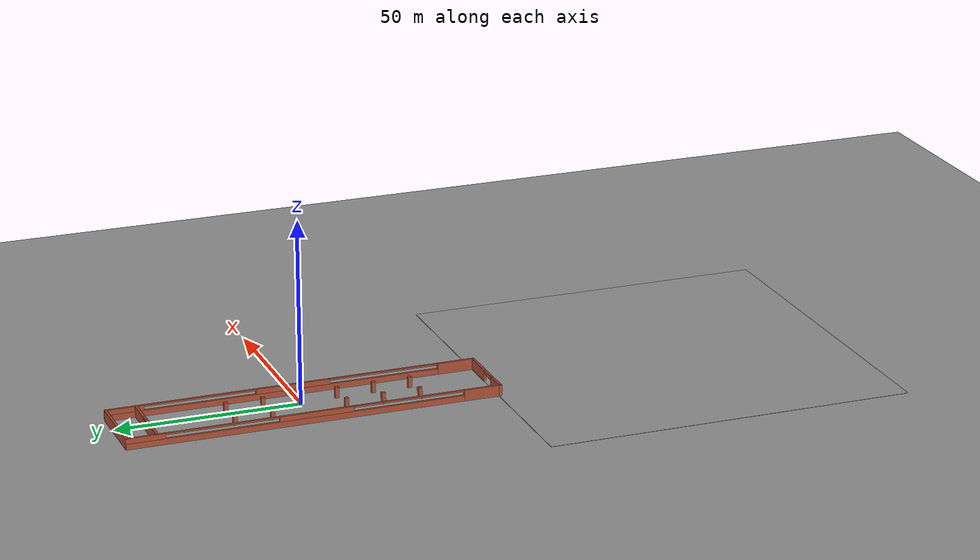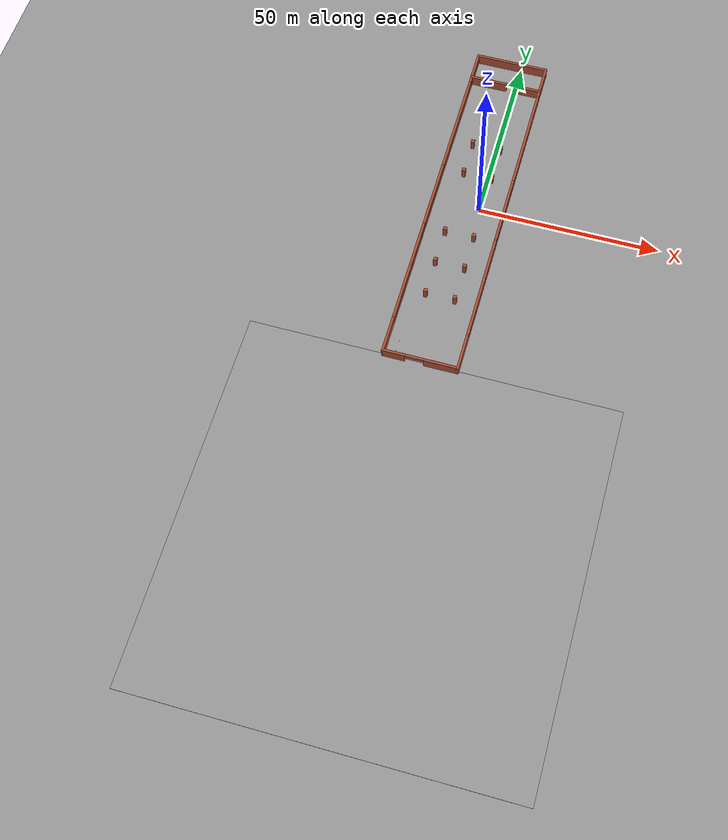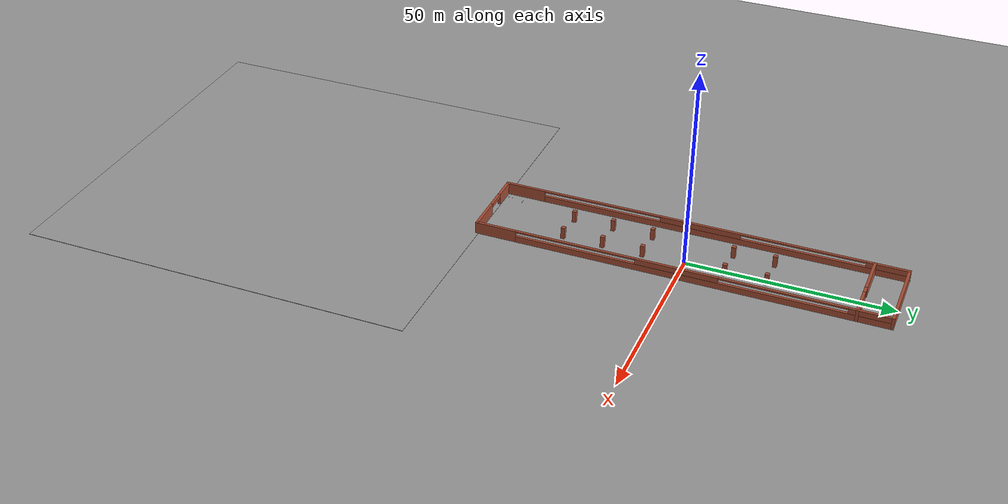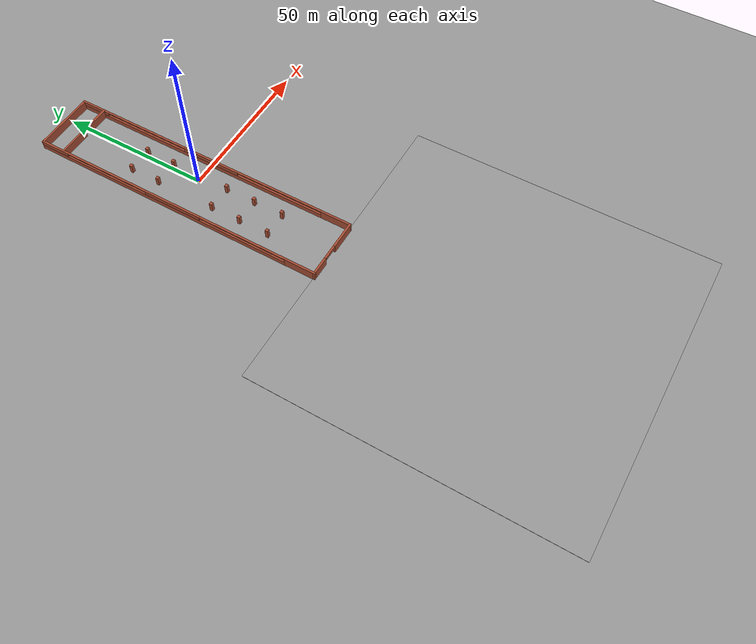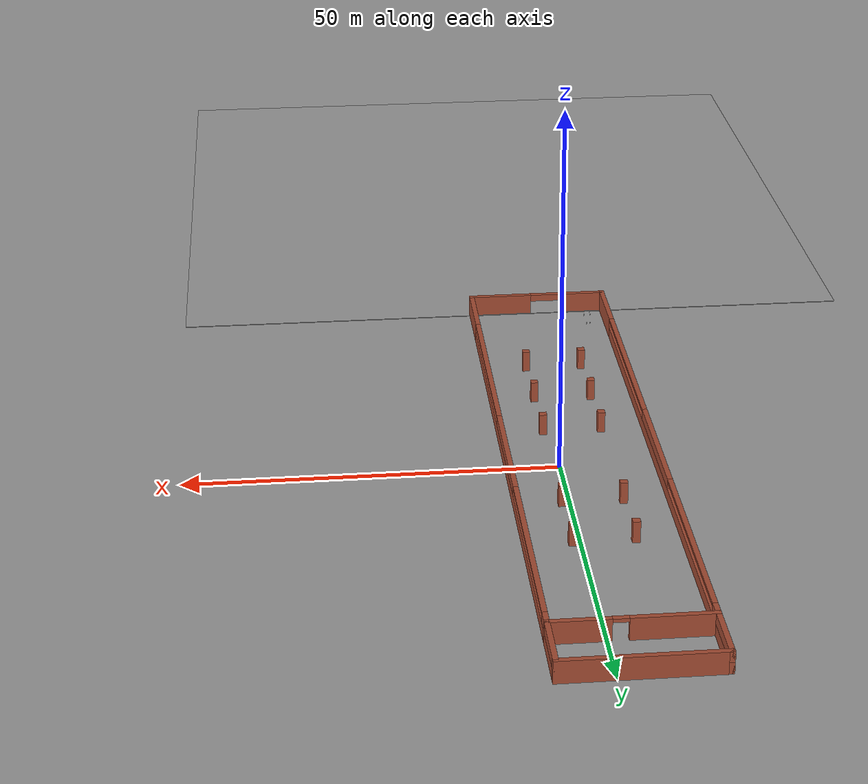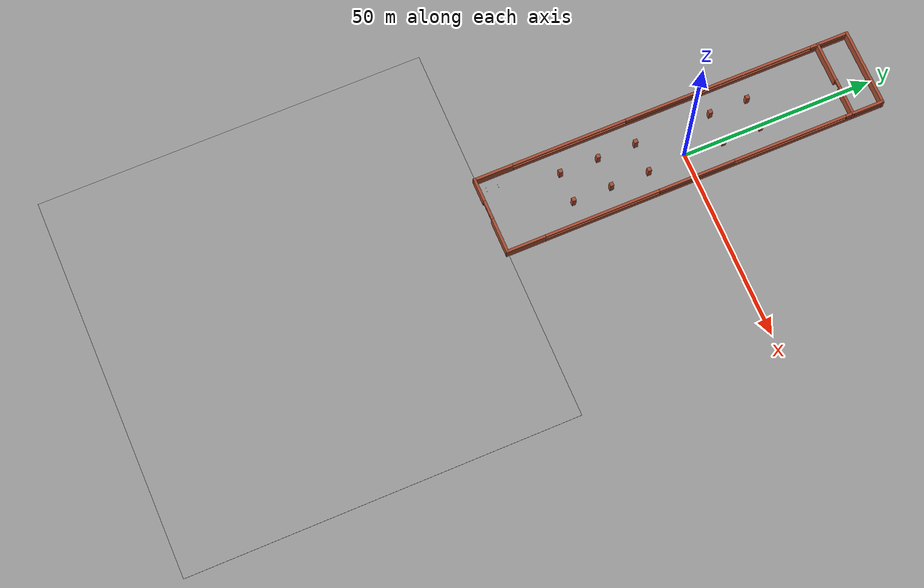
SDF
<sdf version="1.4">
 <world name="default">
  <light name="sun" type="directional">
   <pose>0 0 10 0 -0 0</pose>
   <diffuse>0.8 0.8 0.8 1</diffuse>
   <specular>0.2 0.2 0.2 1</specular>
   <attenuation>
    <range>1000</range>
    <constant>0.9</constant>
    <linear>0.01</linear>
    <quadratic>0.001</quadratic>
   </attenuation>
   <direction>-0.5 0.1 -0.9</direction>
  </light>
  <physics type="ode">
   <max_step_size>0.001</max_step_size>
   <real_time_factor>1</real_time_factor>
   <real_time_update_rate>1000</real_time_update_rate>
   <gravity>0 0 -9.8</gravity>
  </physics>
  <scene><ambient>0.4 0.4 0.4 1</ambient><background>0.7 0.7 0.7 1</background><shadows>1</shadows></scene>
  <spherical_coordinates>
   <surface_model>EARTH_WGS84</surface_model>
   <latitude_deg>0</latitude_deg>
   <longitude_deg>0</longitude_deg>
   <elevation>0</elevation>
   <heading_deg>0</heading_deg>
  </spherical_coordinates>
  <model name="beer">
   <link name="link">
    <pose>0 0 0.115 0 -0 0</pose>
    <inertial>
     <mass>0.39</mass>
     <inertia><ixx>0.00058</ixx><ixy>0</ixy><ixz>0</ixz><iyy>0.00058</iyy><iyz>0</iyz><izz>0.00019</izz></inertia>
    </inertial>
    <collision name="collision">
     <geometry><cylinder><radius>0.055</radius><length>0.23</length></cylinder></geometry>
    </collision>
    <visual name="visual">
     <geometry><cylinder><radius>0.055</radius><length>0.23</length></cylinder></geometry>
     <material>
      <script>
       <uri>model://beer/materials/scripts</uri>
       <uri>model://beer/materials/textures</uri>
       <name>Beer/Diffuse</name>
      </script>
     </material>
    </visual>
    <velocity_decay><linear>0</linear><angular>0</angular></velocity_decay>
   </link>
   <pose>-11 -49 -0 -2e-06 1e-06 5e-05</pose>
   <static>0</static>
  </model>
  <model name="beer_0">
   <link name="link">
    <pose>0 0 0.115 0 -0 0</pose>
    <inertial>
     <mass>0.39</mass>
     <inertia><ixx>0.00058</ixx><ixy>0</ixy><ixz>0</ixz><iyy>0.00058</iyy><iyz>0</iyz><izz>0.00019</izz></inertia>
    </inertial>
    <collision name="collision">
     <geometry><cylinder><radius>0.055</radius><length>0.23</length></cylinder></geometry>
    </collision>
    <visual name="visual">
     <geometry><cylinder><radius>0.055</radius><length>0.23</length></cylinder></geometry>
     <material>
      <script>
       <uri>model://beer/materials/scripts</uri>
       <uri>model://beer/materials/textures</uri>
       <name>Beer/Diffuse</name>
      </script>
     </material>
    </visual>
    <velocity_decay><linear>0</linear><angular>0</angular></velocity_decay>
   </link>
   <pose>-11.0043 -47.995 -0 -2e-06 -1e-06 -0.216385</pose>
   <static>0</static>
  </model>
  <model name="beer_1">
   <link name="link">
    <pose>0 0 0.115 0 -0 0</pose>
    <inertial>
     <mass>0.39</mass>
     <inertia><ixx>0.00058</ixx><ixy>0</ixy><ixz>0</ixz><iyy>0.00058</iyy><iyz>0</iyz><izz>0.00019</izz></inertia>
    </inertial>
    <collision name="collision">
     <geometry><cylinder><radius>0.055</radius><length>0.23</length></cylinder></geometry>
    </collision>
    <visual name="visual">
     <geometry><cylinder><radius>0.055</radius><length>0.23</length></cylinder></geometry>
     <material>
      <script>
       <uri>model://beer/materials/scripts</uri>
       <uri>model://beer/materials/textures</uri>
       <name>Beer/Diffuse</name>
      </script>
     </material>
    </visual>
    <velocity_decay><linear>0</linear><angular>0</angular></velocity_decay>
   </link>
   <pose>-10 -48 -0 -2e-06 1e-06 5e-05</pose>
   <static>0</static>
  </model>
  <model name="beer_2">
   <link name="link">
    <pose>0 0 0.115 0 -0 0</pose>
    <inertial>
     <mass>0.39</mass>
     <inertia><ixx>0.00058</ixx><ixy>0</ixy><ixz>0</ixz><iyy>0.00058</iyy><iyz>0</iyz><izz>0.00019</izz></inertia>
    </inertial>
    <collision name="collision">
     <geometry><cylinder><radius>0.055</radius><length>0.23</length></cylinder></geometry>
    </collision>
    <visual name="visual">
     <geometry><cylinder><radius>0.055</radius><length>0.23</length></cylinder></geometry>
     <material>
      <script>
       <uri>model://beer/materials/scripts</uri>
       <uri>model://beer/materials/textures</uri>
       <name>Beer/Diffuse</name>
      </script>
     </material>
    </visual>
    <velocity_decay><linear>0</linear><angular>0</angular></velocity_decay>
   </link>
   <pose>-10 -45 -0 -2e-06 1e-06 5e-05</pose>
   <static>0</static>
  </model>
  <model name="beer_3">
   <link name="link">
    <pose>0 0 0.115 0 -0 0</pose>
    <inertial>
     <mass>0.39</mass>
     <inertia><ixx>0.00058</ixx><ixy>0</ixy><ixz>0</ixz><iyy>0.00058</iyy><iyz>0</iyz><izz>0.00019</izz></inertia>
    </inertial>
    <collision name="collision">
     <geometry><cylinder><radius>0.055</radius><length>0.23</length></cylinder></geometry>
    </collision>
    <visual name="visual">
     <geometry><cylinder><radius>0.055</radius><length>0.23</length></cylinder></geometry>
     <material>
      <script>
       <uri>model://beer/materials/scripts</uri>
       <uri>model://beer/materials/textures</uri>
       <name>Beer/Diffuse</name>
      </script>
     </material>
    </visual>
    <velocity_decay><linear>0</linear><angular>0</angular></velocity_decay>
   </link>
   <pose>-10.581 -45 -0 -2e-06 1e-06 5e-05</pose>
   <static>0</static>
  </model>
  <model name="ground_plane_0">
   <static>1</static>
   <link name="link">
    <collision name="collision">
     <geometry><plane><normal>0 0 1</normal><size>100 100</size></plane></geometry>
     <surface><friction><ode><mu>100</mu><mu2>50</mu2></ode></friction></surface>
    </collision>
    <visual name="visual">
     <cast_shadows>0</cast_shadows>
     <geometry><plane><normal>0 0 1</normal><size>100 100</size></plane></geometry>
     <material>
      <script><uri>file://media/materials/scripts/gazebo.material</uri><name>Gazebo/Grey</name></script>
     </material>
    </visual>
    <velocity_decay><linear>0</linear><angular>0</angular></velocity_decay>
   </link>
   <pose>0.507921 0 0 0 -0 0</pose>
  </model>
  <model name="ground_plane_1">
   <static>1</static>
   <link name="link">
    <collision name="collision">
     <geometry><plane><normal>0 0 1</normal><size>100 100</size></plane></geometry>
     <surface><friction><ode><mu>100</mu><mu2>50</mu2></ode></friction></surface>
    </collision>
    <visual name="visual">
     <cast_shadows>0</cast_shadows>
     <geometry><plane><normal>0 0 1</normal><size>100 100</size></plane></geometry>
     <material>
      <script><uri>file://media/materials/scripts/gazebo.material</uri><name>Gazebo/Grey</name></script>
     </material>
    </visual>
    <velocity_decay><linear>0</linear><angular>0</angular></velocity_decay>
   </link>
   <pose>0.514688 -99.5997 0 0 -0 0</pose>
  </model>
  <model name="FactoryWorldModel_0">
   <pose>-3 0 0 0 -0 0</pose>
   <link name="Wall_10">
    <pose>0 -50 0 0 -0 0</pose>
    <visual name="Wall_10_Visual_0">
     <pose>-7.19666 0 1.5 0 -0 0</pose>
     <geometry><box><size>6.30668 0.7 3</size></box></geometry>
     <material>
      <script><uri>file://media/materials/scripts/gazebo.material</uri><name>Gazebo/Bricks</name></script>
      <ambient>1 1 1 1</ambient>
     </material>
    </visual>
    <collision name="Wall_10_Collision_0">
     <geometry><box><size>6.30668 0.7 3</size></box></geometry>
     <pose>-7.19666 0 1.5 0 -0 0</pose>
    </collision>
    <visual name="Wall_10_Visual_1">
     <pose>5.65334 0 1.5 0 -0 0</pose>
     <geometry><box><size>9.39332 0.7 3</size></box></geometry>
     <material>
      <script><uri>file://media/materials/scripts/gazebo.material</uri><name>Gazebo/Bricks</name></script>
      <ambient>1 1 1 1</ambient>
     </material>
    </visual>
    <collision name="Wall_10_Collision_1">
     <geometry><box><size>9.39332 0.7 3</size></box></geometry>
     <pose>5.65334 0 1.5 0 -0 0</pose>
    </collision>
    <visual name="Wall_10_Visual_2">
     <pose>-1.54332 0 2.5 0 -0 0</pose>
     <geometry><box><size>5 0.7 1</size></box></geometry>
     <material>
      <script><uri>file://media/materials/scripts/gazebo.material</uri><name>Gazebo/Bricks</name></script>
      <ambient>1 1 1 1</ambient>
     </material>
    </visual>
    <collision name="Wall_10_Collision_2">
     <geometry><box><size>5 0.7 1</size></box></geometry>
     <pose>-1.54332 0 2.5 0 -0 0</pose>
    </collision>
    <velocity_decay><linear>0</linear><angular>0</angular></velocity_decay>
   </link>
   <link name="Wall_14">
    <collision name="Wall_14_Collision">
     <geometry><box><size>1 1 3</size></box></geometry>
     <pose>0 0 1.5 0 -0 0</pose>
    </collision>
    <visual name="Wall_14_Visual">
     <pose>0 0 1.5 0 -0 0</pose>
     <geometry><box><size>1 1 3</size></box></geometry>
     <material>
      <script><uri>file://media/materials/scripts/gazebo.material</uri><name>Gazebo/Bricks</name></script>
      <ambient>1 1 1 1</ambient>
     </material>
    </visual>
    <pose>4 -30 0 0 -0 0</pose>
    <velocity_decay><linear>0</linear><angular>0</angular></velocity_decay>
   </link>
   <link name="Wall_16">
    <collision name="Wall_16_Collision">
     <geometry><box><size>1 1 3</size></box></geometry>
     <pose>0 0 1.5 0 -0 0</pose>
    </collision>
    <visual name="Wall_16_Visual">
     <pose>0 0 1.5 0 -0 0</pose>
     <geometry><box><size>1 1 3</size></box></geometry>
     <material>
      <script><uri>file://media/materials/scripts/gazebo.material</uri><name>Gazebo/Bricks</name></script>
      <ambient>1 1 1 1</ambient>
     </material>
    </visual>
    <pose>-4 -30 0 0 -0 0</pose>
    <velocity_decay><linear>0</linear><angular>0</angular></velocity_decay>
   </link>
   <link name="Wall_18">
    <collision name="Wall_18_Collision">
     <geometry><box><size>1 1 3</size></box></geometry>
     <pose>0 0 1.5 0 -0 0</pose>
    </collision>
    <visual name="Wall_18_Visual">
     <pose>0 0 1.5 0 -0 0</pose>
     <geometry><box><size>1 1 3</size></box></geometry>
     <material>
      <script><uri>file://media/materials/scripts/gazebo.material</uri><name>Gazebo/Bricks</name></script>
      <ambient>1 1 1 1</ambient>
     </material>
    </visual>
    <pose>-4 -20 0 0 -0 0</pose>
    <velocity_decay><linear>0</linear><angular>0</angular></velocity_decay>
   </link>
   <link name="Wall_2">
    <collision name="Wall_2_Collision">
     <geometry><box><size>20.7 0.7 3</size></box></geometry>
     <pose>0 0 1.5 0 -0 0</pose>
    </collision>
    <visual name="Wall_2_Visual">
     <pose>0 0 1.5 0 -0 0</pose>
     <geometry><box><size>20.7 0.7 3</size></box></geometry>
     <material>
      <script><uri>file://media/materials/scripts/gazebo.material</uri><name>Gazebo/Bricks</name></script>
      <ambient>1 1 1 1</ambient>
     </material>
    </visual>
    <pose>0 50 0 0 -0 0</pose>
    <velocity_decay><linear>0</linear><angular>0</angular></velocity_decay>
   </link>
   <link name="Wall_20">
    <collision name="Wall_20_Collision">
     <geometry><box><size>1 1 3</size></box></geometry>
     <pose>0 0 1.5 0 -0 0</pose>
    </collision>
    <visual name="Wall_20_Visual">
     <pose>0 0 1.5 0 -0 0</pose>
     <geometry><box><size>1 1 3</size></box></geometry>
     <material>
      <script><uri>file://media/materials/scripts/gazebo.material</uri><name>Gazebo/Bricks</name></script>
      <ambient>1 1 1 1</ambient>
     </material>
    </visual>
    <pose>4 -20 0 0 -0 0</pose>
    <velocity_decay><linear>0</linear><angular>0</angular></velocity_decay>
   </link>
   <link name="Wall_22">
    <collision name="Wall_22_Collision">
     <geometry><box><size>1 1 3</size></box></geometry>
     <pose>0 0 1.5 0 -0 0</pose>
    </collision>
    <visual name="Wall_22_Visual">
     <pose>0 0 1.5 0 -0 0</pose>
     <geometry><box><size>1 1 3</size></box></geometry>
     <material>
      <script><uri>file://media/materials/scripts/gazebo.material</uri><name>Gazebo/Bricks</name></script>
      <ambient>1 1 1 1</ambient>
     </material>
    </visual>
    <pose>-4 -10 0 0 -0 0</pose>
    <velocity_decay><linear>0</linear><angular>0</angular></velocity_decay>
   </link>
   <link name="Wall_24">
    <collision name="Wall_24_Collision">
     <geometry><box><size>1 1 3</size></box></geometry>
     <pose>0 0 1.5 0 -0 0</pose>
    </collision>
    <visual name="Wall_24_Visual">
     <pose>0 0 1.5 0 -0 0</pose>
     <geometry><box><size>1 1 3</size></box></geometry>
     <material>
      <script><uri>file://media/materials/scripts/gazebo.material</uri><name>Gazebo/Bricks</name></script>
      <ambient>1 1 1 1</ambient>
     </material>
    </visual>
    <pose>4 -10 0 0 -0 0</pose>
    <velocity_decay><linear>0</linear><angular>0</angular></velocity_decay>
   </link>
   <link name="Wall_26">
    <collision name="Wall_26_Collision">
     <geometry><box><size>1 1 3</size></box></geometry>
     <pose>0 0 1.5 0 -0 0</pose>
    </collision>
    <visual name="Wall_26_Visual">
     <pose>0 0 1.5 0 -0 0</pose>
     <geometry><box><size>1 1 3</size></box></geometry>
     <material>
      <script><uri>file://media/materials/scripts/gazebo.material</uri><name>Gazebo/Bricks</name></script>
      <ambient>1 1 1 1</ambient>
     </material>
    </visual>
    <pose>-4 10 0 0 -0 0</pose>
    <velocity_decay><linear>0</linear><angular>0</angular></velocity_decay>
   </link>
   <link name="Wall_28">
    <collision name="Wall_28_Collision">
     <geometry><box><size>1 1 3</size></box></geometry>
     <pose>0 0 1.5 0 -0 0</pose>
    </collision>
    <visual name="Wall_28_Visual">
     <pose>0 0 1.5 0 -0 0</pose>
     <geometry><box><size>1 1 3</size></box></geometry>
     <material>
      <script><uri>file://media/materials/scripts/gazebo.material</uri><name>Gazebo/Bricks</name></script>
      <ambient>1 1 1 1</ambient>
     </material>
    </visual>
    <pose>4 10 0 0 -0 0</pose>
    <velocity_decay><linear>0</linear><angular>0</angular></velocity_decay>
   </link>
   <link name="Wall_31">
    <collision name="Wall_31_Collision">
     <geometry><box><size>1 1 3</size></box></geometry>
     <pose>0 0 1.5 0 -0 0</pose>
    </collision>
    <visual name="Wall_31_Visual">
     <pose>0 0 1.5 0 -0 0</pose>
     <geometry><box><size>1 1 3</size></box></geometry>
     <material>
      <script><uri>file://media/materials/scripts/gazebo.material</uri><name>Gazebo/Bricks</name></script>
      <ambient>1 1 1 1</ambient>
     </material>
    </visual>
    <pose>4 20 0 0 -0 0</pose>
    <velocity_decay><linear>0</linear><angular>0</angular></velocity_decay>
   </link>
   <link name="Wall_33">
    <collision name="Wall_33_Collision">
     <geometry><box><size>1 1 3</size></box></geometry>
     <pose>0 0 1.5 0 -0 0</pose>
    </collision>
    <visual name="Wall_33_Visual">
     <pose>0 0 1.5 0 -0 0</pose>
     <geometry><box><size>1 1 3</size></box></geometry>
     <material>
      <script><uri>file://media/materials/scripts/gazebo.material</uri><name>Gazebo/Bricks</name></script>
      <ambient>1 1 1 1</ambient>
     </material>
    </visual>
    <pose>-4 20 0 0 -0 0</pose>
    <velocity_decay><linear>0</linear><angular>0</angular></velocity_decay>
   </link>
   <link name="Wall_37">
    <pose>0 42 0 0 -0 0</pose>
    <visual name="Wall_37_Visual_0">
     <pose>-4.97882 0 1.5 0 -0 0</pose>
     <geometry><box><size>10.7424 0.7 3</size></box></geometry>
     <material>
      <script><uri>file://media/materials/scripts/gazebo.material</uri><name>Gazebo/Bricks</name></script>
      <ambient>1 1 1 1</ambient>
     </material>
    </visual>
    <collision name="Wall_37_Collision_0">
     <geometry><box><size>10.7424 0.7 3</size></box></geometry>
     <pose>-4.97882 0 1.5 0 -0 0</pose>
    </collision>
    <visual name="Wall_37_Visual_1">
     <pose>6.37118 0 1.5 0 -0 0</pose>
     <geometry><box><size>7.95763 0.7 3</size></box></geometry>
     <material>
      <script><uri>file://media/materials/scripts/gazebo.material</uri><name>Gazebo/Bricks</name></script>
      <ambient>1 1 1 1</ambient>
     </material>
    </visual>
    <collision name="Wall_37_Collision_1">
     <geometry><box><size>7.95763 0.7 3</size></box></geometry>
     <pose>6.37118 0 1.5 0 -0 0</pose>
    </collision>
    <visual name="Wall_37_Visual_2">
     <pose>1.39237 0 2.75 0 -0 0</pose>
     <geometry><box><size>2 0.7 0.5</size></box></geometry>
     <material>
      <script><uri>file://media/materials/scripts/gazebo.material</uri><name>Gazebo/Bricks</name></script>
      <ambient>1 1 1 1</ambient>
     </material>
    </visual>
    <collision name="Wall_37_Collision_2">
     <geometry><box><size>2 0.7 0.5</size></box></geometry>
     <pose>1.39237 0 2.75 0 -0 0</pose>
    </collision>
    <velocity_decay><linear>0</linear><angular>0</angular></velocity_decay>
   </link>
   <link name="Wall_4">
    <pose>10 0 0 0 -0 1.5708</pose>
    <visual name="Wall_4_Visual_0">
     <pose>-45.175 0 1.5 0 -0 0</pose>
     <geometry><box><size>10.35 0.7 3</size></box></geometry>
     <material>
      <script><uri>file://media/materials/scripts/gazebo.material</uri><name>Gazebo/Bricks</name></script>
      <ambient>1 1 1 1</ambient>
     </material>
    </visual>
    <collision name="Wall_4_Collision_0">
     <geometry><box><size>10.35 0.7 3</size></box></geometry>
     <pose>-45.175 0 1.5 0 -0 0</pose>
    </collision>
    <visual name="Wall_4_Visual_1">
     <pose>5.175 0 0.8 0 -0 0</pose>
     <geometry><box><size>90.35 0.7 1.6</size></box></geometry>
     <material>
      <script><uri>file://media/materials/scripts/gazebo.material</uri><name>Gazebo/Bricks</name></script>
      <ambient>1 1 1 1</ambient>
     </material>
    </visual>
    <collision name="Wall_4_Collision_1">
     <geometry><box><size>90.35 0.7 1.6</size></box></geometry>
     <pose>5.175 0 0.8 0 -0 0</pose>
    </collision>
    <visual name="Wall_4_Visual_2">
     <pose>0 0 2.3 0 -0 0</pose>
     <geometry><box><size>20 0.7 1.4</size></box></geometry>
     <material>
      <script><uri>file://media/materials/scripts/gazebo.material</uri><name>Gazebo/Bricks</name></script>
      <ambient>1 1 1 1</ambient>
     </material>
    </visual>
    <collision name="Wall_4_Collision_2">
     <geometry><box><size>20 0.7 1.4</size></box></geometry>
     <pose>0 0 2.3 0 -0 0</pose>
    </collision>
    <visual name="Wall_4_Visual_3">
     <pose>45.175 0 2.3 0 -0 0</pose>
     <geometry><box><size>10.35 0.7 1.4</size></box></geometry>
     <material>
      <script><uri>file://media/materials/scripts/gazebo.material</uri><name>Gazebo/Bricks</name></script>
      <ambient>1 1 1 1</ambient>
     </material>
    </visual>
    <collision name="Wall_4_Collision_3">
     <geometry><box><size>10.35 0.7 1.4</size></box></geometry>
     <pose>45.175 0 2.3 0 -0 0</pose>
    </collision>
    <visual name="Wall_4_Visual_4">
     <pose>-25 0 2.8 0 -0 0</pose>
     <geometry><box><size>30 0.7 0.4</size></box></geometry>
     <material>
      <script><uri>file://media/materials/scripts/gazebo.material</uri><name>Gazebo/Bricks</name></script>
      <ambient>1 1 1 1</ambient>
     </material>
    </visual>
    <collision name="Wall_4_Collision_4">
     <geometry><box><size>30 0.7 0.4</size></box></geometry>
     <pose>-25 0 2.8 0 -0 0</pose>
    </collision>
    <visual name="Wall_4_Visual_5">
     <pose>25 0 2.8 0 -0 0</pose>
     <geometry><box><size>30 0.7 0.4</size></box></geometry>
     <material>
      <script><uri>file://media/materials/scripts/gazebo.material</uri><name>Gazebo/Bricks</name></script>
      <ambient>1 1 1 1</ambient>
     </material>
    </visual>
    <collision name="Wall_4_Collision_5">
     <geometry><box><size>30 0.7 0.4</size></box></geometry>
     <pose>25 0 2.8 0 -0 0</pose>
    </collision>
    <velocity_decay><linear>0</linear><angular>0</angular></velocity_decay>
   </link>
   <link name="Wall_6">
    <pose>-10 0 0 0 -0 1.5708</pose>
    <visual name="Wall_6_Visual_0">
     <pose>-45.175 0 1.5 0 -0 0</pose>
     <geometry><box><size>10.35 0.7 3</size></box></geometry>
     <material>
      <script><uri>file://media/materials/scripts/gazebo.material</uri><name>Gazebo/Bricks</name></script>
      <ambient>1 1 1 1</ambient>
     </material>
    </visual>
    <collision name="Wall_6_Collision_0">
     <geometry><box><size>10.35 0.7 3</size></box></geometry>
     <pose>-45.175 0 1.5 0 -0 0</pose>
    </collision>
    <visual name="Wall_6_Visual_1">
     <pose>5.175 0 0.8 0 -0 0</pose>
     <geometry><box><size>90.35 0.7 1.6</size></box></geometry>
     <material>
      <script><uri>file://media/materials/scripts/gazebo.material</uri><name>Gazebo/Bricks</name></script>
      <ambient>1 1 1 1</ambient>
     </material>
    </visual>
    <collision name="Wall_6_Collision_1">
     <geometry><box><size>90.35 0.7 1.6</size></box></geometry>
     <pose>5.175 0 0.8 0 -0 0</pose>
    </collision>
    <visual name="Wall_6_Visual_2">
     <pose>0 0 2.3 0 -0 0</pose>
     <geometry><box><size>20 0.7 1.4</size></box></geometry>
     <material>
      <script><uri>file://media/materials/scripts/gazebo.material</uri><name>Gazebo/Bricks</name></script>
      <ambient>1 1 1 1</ambient>
     </material>
    </visual>
    <collision name="Wall_6_Collision_2">
     <geometry><box><size>20 0.7 1.4</size></box></geometry>
     <pose>0 0 2.3 0 -0 0</pose>
    </collision>
    <visual name="Wall_6_Visual_3">
     <pose>45.175 0 2.3 0 -0 0</pose>
     <geometry><box><size>10.35 0.7 1.4</size></box></geometry>
     <material>
      <script><uri>file://media/materials/scripts/gazebo.material</uri><name>Gazebo/Bricks</name></script>
      <ambient>1 1 1 1</ambient>
     </material>
    </visual>
    <collision name="Wall_6_Collision_3">
     <geometry><box><size>10.35 0.7 1.4</size></box></geometry>
     <pose>45.175 0 2.3 0 -0 0</pose>
    </collision>
    <visual name="Wall_6_Visual_4">
     <pose>-25 0 2.8 0 -0 0</pose>
     <geometry><box><size>30 0.7 0.4</size></box></geometry>
     <material>
      <script><uri>file://media/materials/scripts/gazebo.material</uri><name>Gazebo/Bricks</name></script>
      <ambient>1 1 1 1</ambient>
     </material>
    </visual>
    <collision name="Wall_6_Collision_4">
     <geometry><box><size>30 0.7 0.4</size></box></geometry>
     <pose>-25 0 2.8 0 -0 0</pose>
    </collision>
    <visual name="Wall_6_Visual_5">
     <pose>25 0 2.8 0 -0 0</pose>
     <geometry><box><size>30 0.7 0.4</size></box></geometry>
     <material>
      <script><uri>file://media/materials/scripts/gazebo.material</uri><name>Gazebo/Bricks</name></script>
      <ambient>1 1 1 1</ambient>
     </material>
    </visual>
    <collision name="Wall_6_Collision_5">
     <geometry><box><size>30 0.7 0.4</size></box></geometry>
     <pose>25 0 2.8 0 -0 0</pose>
    </collision>
    <velocity_decay><linear>0</linear><angular>0</angular></velocity_decay>
   </link>
   <static>1</static>
  </model>
 </world>
</sdf>
